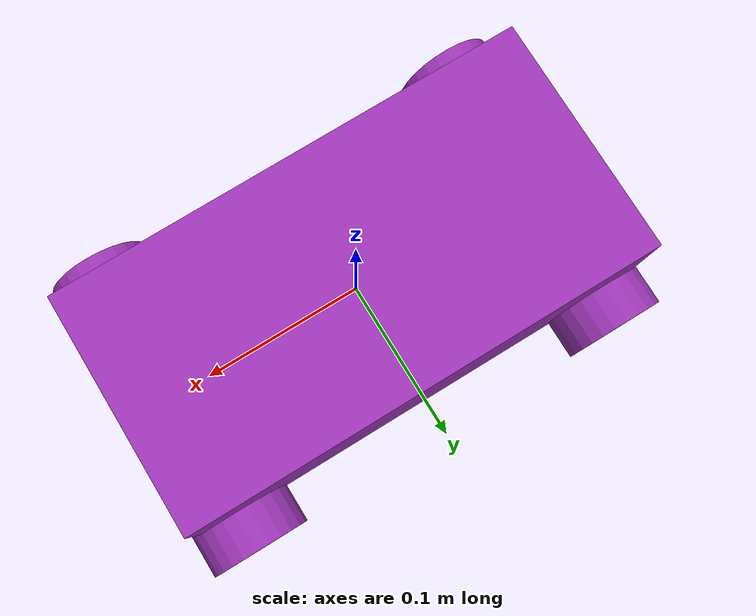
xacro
<?xml version="1.0"?>
<robot name="car" xmlns:xacro="http://www.ros.org/wiki/xacro">
  <xacro:macro name="cylinder_inertia" params="r h m">
    <inertial>
      <mass value="${m}" />
      <inertia  ixx="${m*(3*r*r+h*h)/12}" ixy = "0" ixz = "0"
                iyy="${m*(3*r*r+h*h)/12}" iyz = "0"
                izz="${m*r*r/2}" />
    </inertial>
  </xacro:macro>

  <xacro:macro name="box_inertia" params="w h d m">
    <inertial>
      <mass value="${m}" />
      <inertia  ixx="${m*(h*h+d*d)/12}" ixy = "0" ixz = "0"
                iyy="${m*(w*w+d*d)/12}" iyz = "0"
                izz="${m*(w*w+h*h)/12}" />
    </inertial>
  </xacro:macro>

  <xacro:macro name="null_inertial">
    <xacro:box_inertia w="0.1" h="0.1" d="0.1" m="0.1" />
  </xacro:macro>

  <xacro:property name="car_mass" value="30.0" />
  <xacro:property name="car_length" value="0.3" />
  <xacro:property name="car_width" value="0.15" />
  <xacro:property name="car_height" value="0.1" />

  <xacro:property name="wheel_mass" value="1"/>
  <xacro:property name="wheel_diameter" value="0.06367"/>
  <xacro:property name="wheel_width" value="0.028"/>

  <xacro:property name="front_wheel_pos" value="0.127"/>
  <xacro:property name="rear_wheel_pos" value="-0.127"/>
  <xacro:property name="axle_width" value="0.2"/>
  <xacro:property name="steering_angle_limit" value="0.785"/> <!-- about 45 degrees -->

  <xacro:property name="left" value="1"/>
  <xacro:property name="right" value="-1"/>

  <!-- maximum effort and velocity limits in Nm and rad/s -->
  <xacro:property name="steering_effort" value="10"/>
  <xacro:property name="steering_velocity" value="100"/>
  <xacro:property name="axle_effort" value="100"/>
  <xacro:property name="axle_velocity" value="100"/>

  <material name="Red">
    <color rgba="1.0 0.7 1.0 1.0"/>
  </material>

  <!-- general wheel macro without functionality -->
  <xacro:macro name="wheel" params="lr_prefix fr_prefix lr_reflect wheel_pos child">
    <link name="${lr_prefix}_${fr_prefix}_axle_carrier">
      <!--xacro:box_inertia m="0.5" w="0.01" h="0.01" d="0.01"/-->
      <xacro:null_inertial/>
    </link>

    <joint name="${lr_prefix}_${fr_prefix}_shock" type="fixed">
      <origin xyz="${wheel_pos}  ${lr_reflect * (axle_width / 2 - wheel_width / 2)} -0.03471"/>
      <parent link="chassis"/>
      <child link="${child}"/>
      <axis xyz="0 0 0"/>
    </joint>

    <joint name="${lr_prefix}_${fr_prefix}_axle" type="continuous">
      <origin xyz="0 0 0" rpy="-1.57 0 0"/>
      <parent link="${lr_prefix}_${fr_prefix}_axle_carrier"/>
      <child link="${lr_prefix}_${fr_prefix}_wheel"/>
      <axis xyz="0 0 1"/>
      <limit effort="${axle_effort}" velocity="${axle_velocity}"/>
      <dynamics damping="0.01" friction="0.1" />
    </joint>

    <link name="${lr_prefix}_${fr_prefix}_wheel">
      <visual>
        <origin xyz="0 0 0" rpy="0 0 0"/>
        <geometry>
          <cylinder radius="${wheel_diameter / 2}" length="${wheel_width}"/>
        </geometry>
      </visual>
      <collision>
        <origin xyz="0 0 0" rpy="0 0 0"/>
        <geometry>
          <cylinder radius="${wheel_diameter / 2}" length="${wheel_width}"/>
        </geometry>
      </collision>
      <xacro:cylinder_inertia m="${wheel_mass}" r="${wheel_diameter / 2}" h="${wheel_width}"/>
    </link>

    <gazebo reference="${lr_prefix}_${fr_prefix}_wheel">
      <mu1>0.7</mu1>
      <mu2>0.7</mu2>
      <kd>1</kd>
      <kp>100000000</kp>
      <material>Gazebo/Purple</material>
    </gazebo>
  </xacro:macro>

  <!-- Front Wheel Macro with steering -->
  <xacro:macro name="front_wheel" params="lr_prefix fr_prefix lr_reflect wheel_pos">
    <link name="${lr_prefix}_steering_link">
      <xacro:null_inertial/>
    </link>

    <joint name="${lr_prefix}_steering_joint" type="revolute">
      <parent link="${lr_prefix}_steering_link"/>
      <child link="${lr_prefix}_${fr_prefix}_axle_carrier"/>
      <axis xyz="0 0 1"/>
      <limit lower="-${steering_angle_limit}" upper="${steering_angle_limit}" effort="${steering_effort}" velocity="${steering_velocity}"/>
    </joint>
    <xacro:wheel lr_prefix="${lr_prefix}" fr_prefix="${fr_prefix}"
                 lr_reflect="${lr_reflect}" wheel_pos="${wheel_pos}" child="${lr_prefix}_steering_link"/>
  </xacro:macro>

  <!-- Rear Wheel Macro with motor -->
  <xacro:macro name="rear_wheel" params="lr_prefix fr_prefix lr_reflect wheel_pos">
    <xacro:wheel lr_prefix="${lr_prefix}" fr_prefix="${fr_prefix}"
                 lr_reflect="${lr_reflect}" wheel_pos="${wheel_pos}" child="${lr_prefix}_${fr_prefix}_axle_carrier"/>

  </xacro:macro>

  <link name="base_link">
    <visual>
      <geometry>
        <box size="0.01 0.01 0.01"/>
      </geometry>
      <material name="chassis_mat"/>
    </visual>
  </link>
  <gazebo reference="base_link">
    <material>Gazebo/Grey</material>
  </gazebo>

  <!-- Main body -->
  <link name="chassis">
    <xacro:box_inertia m="${car_mass}" w="${car_length}" h="${car_width}" d="${car_height}"/>
    <visual>
      <origin xyz="0 0 0" rpy="0 0 0" />
      <geometry>
        <box size="${car_length} ${car_width} ${car_height}" />
      </geometry>
    </visual>
    <collision>
      <origin xyz="0 0 0" rpy="0 0 0" />
      <geometry>
        <box size="${car_length} ${car_width} ${car_height}" />
      </geometry>
    </collision>
  </link>
  <gazebo reference="chassis">
    <material>Gazebo/Purple</material>
  </gazebo>

  <joint name="base_link_to_chassis" type="fixed">
    <axis xyz="0 -1 -1" />
    <parent link="base_link"/>
    <child link="chassis"/>
  </joint>

  <link name="imu">
    <!--xacro:null_inertial/-->
  </link>
  <joint name="base_link_to_imu" type="fixed">
    <origin xyz="0.0 0.0 0.0"/>
    <parent link="base_link"/>
    <child link="imu"/>
    <dynamics damping="0.0" friction="0.0"/>
  </joint>

  <gazebo reference="imu">
    <sensor name="imu" type="imu">
      <always_on>1</always_on>
      <update_rate>30.0</update_rate>
    </sensor>
  </gazebo>

<!-- Normal ToF Sensor -->

  <xacro:macro name="lidar_sensor" params="idx xyz angle">
    <link name="lidar_link_${idx}">
      <!--xacro:null_inertial/-->
    </link>

    <joint name="lidar_joint_${idx}" type="fixed">
      <axis xyz="0 0 -1"/>
      <origin xyz="${xyz}" rpy="0 0 ${angle}"/>
      <parent link="base_link"/>
      <child link="lidar_link_${idx}"/>
    </joint>

    <gazebo reference="lidar_link_${idx}">
      <sensor type="ray" name="lidar_sensor_${idx}">
        <pose>0 0 0 0 0 0</pose>
        <visualize>true</visualize>
        <update_rate>15</update_rate>
        <ray>
          <scan>
            <horizontal>
              <samples>5</samples>
              <resolution>1</resolution>
              <min_angle>-0.2181662</min_angle>
              <max_angle>0.2181662</max_angle>
            </horizontal>
          </scan>
          <range>
            <min>0.10</min>
            <max>3.0</max>
            <resolution>0.009</resolution>
          </range>
        </ray>
        <plugin name="scan" filename="libgazebo_ros_ray_sensor.so">
          <ros>
            <remapping>~/out:=tof_${idx}</remapping>
          </ros>
          <output_type>sensor_msgs/Range</output_type>
          <frame_name>tof_${idx}</frame_name>
          <radiation_type>ultrasound</radiation_type>
        </plugin>
      </sensor>
    </gazebo>
  </xacro:macro>

<!-- Modified ToF sensor (for overtaker) -->

  <xacro:macro name="lidar_sensor_lane" params="idx xyz angle">
    <link name="lidar_link_${idx}">
      <!--xacro:null_inertial/-->
    </link>

    <joint name="lidar_joint_${idx}" type="fixed">
      <axis xyz="0 0 -1"/>
      <origin xyz="${xyz}" rpy="0 0 ${angle}"/>
      <parent link="base_link"/>
      <child link="lidar_link_${idx}"/>
    </joint>

    <gazebo reference="lidar_link_${idx}">
      <sensor type="ray" name="lidar_sensor_${idx}">
        <pose>0 0 0 0 0 0</pose>
        <visualize>true</visualize>
        <update_rate>15</update_rate>
        <ray>
          <scan>
            <horizontal>
              <samples>2</samples>
              <resolution>1</resolution>
              <min_angle>-0.027</min_angle>
              <max_angle>0.027</max_angle>
            </horizontal>
          </scan>
          <range>
            <min>0.10</min>
            <max>2.5</max>
            <resolution>0.009</resolution>
          </range>
        </ray>
        <plugin name="scan" filename="libgazebo_ros_ray_sensor.so">
          <ros>
            <remapping>~/out:=tof_${idx}</remapping>
          </ros>
          <output_type>sensor_msgs/Range</output_type>
          <frame_name>tof_${idx}</frame_name>
          <radiation_type>ultrasound</radiation_type>
        </plugin>
      </sensor>
    </gazebo>
  </xacro:macro>

<!-- Laser Sensor (for velocity control) -->

  <xacro:macro name="lidar_sensor_laser" params="idx xyz angle">
    <link name="lidar_link_${idx}">
      <!--xacro:null_inertial/-->
    </link>

    <joint name="lidar_joint_${idx}" type="fixed">
      <axis xyz="0 0 -1"/>
      <origin xyz="${xyz}" rpy="0 0 ${angle}"/>
      <parent link="base_link"/>
      <child link="lidar_link_${idx}"/>
    </joint>

    <gazebo reference="lidar_link_${idx}">
      <sensor type="ray" name="lidar_sensor_${idx}">
        <pose>0 0 0 0 0 0</pose>
        <always_on>true</always_on>
        <visualize>true</visualize>
        <update_rate>5</update_rate>
        <ray>
          <scan>
            <horizontal>
              <samples>360</samples>
              <resolution>1.00000</resolution>
              <min_angle>0.000000</min_angle>
              <max_angle>6.280000</max_angle>
            </horizontal>
          </scan>
          <range>
            <min>0.120000</min>
            <max>3.5</max>
            <resolution>0.015000</resolution>
          </range>
          <noise>
            <type>gaussian</type>
            <mean>0.0</mean>
            <stddev>0.01</stddev>
          </noise>
        </ray>
        <plugin name="scan" filename="libgazebo_ros_ray_sensor.so">
          <ros>
            <remapping>~/out:=tof_${idx}</remapping>
          </ros>
          <output_type>sensor_msgs/LaserScan</output_type>
          <frame_name>tof_${idx}</frame_name>
        </plugin>
      </sensor>
    </gazebo>
  </xacro:macro>

<!-- Camera sensor -->

  <xacro:macro name="camera_sensor" params="xyz pitch">
    <link name="camera_link">
    </link>

    <joint name="camera_joint" type="fixed">
      <axis xyz="0 0 -1"/>
      <origin xyz="${xyz}" rpy="0 ${pitch} 0"/>
      <parent link="base_link"/>
      <child link="camera_link"/>
    </joint>

    <gazebo reference="camera_link">
      <sensor type="camera" name="camera">
        <visualize>true</visualize>
        <update_rate>30.0</update_rate>
        <camera name="camera">
          <horizontal_fov>1.5707963267948966</horizontal_fov>
          <image>
            <width>640</width>
            <height>480</height>
            <format>B8G8R8</format>
          </image>
          <clip>
            <near>0.02</near>
            <far>300</far>
          </clip>
        </camera>
        <plugin name="camera_controller" filename="libgazebo_ros_camera.so">
          <alwaysOn>true</alwaysOn>
          <updateRate>30.0</updateRate>
          <frameName>camera_link</frameName>
        </plugin>
      </sensor>
    </gazebo>
  </xacro:macro>

  <!-- Wheels -->
  <xacro:front_wheel lr_prefix="left" fr_prefix="front" lr_reflect="${left}" wheel_pos="${front_wheel_pos}"/>
  <xacro:front_wheel lr_prefix="right" fr_prefix="front" lr_reflect="${right}" wheel_pos="${front_wheel_pos}"/>
  <xacro:rear_wheel lr_prefix="left" fr_prefix="rear" lr_reflect="${left}" wheel_pos="${rear_wheel_pos}"/>
  <xacro:rear_wheel lr_prefix="right" fr_prefix="rear" lr_reflect="${right}" wheel_pos="${rear_wheel_pos}"/>

  <xacro:lidar_sensor idx="Front_Left" xyz="0.05 0.1 0.018" angle="1.5707963267948966"/>
  <xacro:lidar_sensor idx="Front_Right" xyz="0.05 -0.1 0.018" angle="-1.5707963267948966"/>
  <xacro:lidar_sensor idx="Back" xyz="-0.15 0 0.018" angle="3.141592"/>
  <xacro:lidar_sensor_lane idx="Front" xyz="0.15 0 0.018" angle="0"/>
  <xacro:camera_sensor xyz="0.6 0 1" pitch="1.57"/>

  <ros2_control name="GazeboSystem" type="system">
    <hardware>
      <plugin>gazebo_ros2_control/GazeboSystem</plugin>
    </hardware>
    <joint name="left_rear_axle">
      <command_interface name="velocity">
        <param name="min">-10</param>
        <param name="max">10</param>
      </command_interface>
      <state_interface name="velocity"/>
    </joint>
    <joint name="right_rear_axle">
      <command_interface name="velocity">
        <param name="min">-10</param>
        <param name="max">10</param>
      </command_interface>
      <state_interface name="velocity"/>
    </joint>
    <joint name="left_steering_joint">
      <command_interface name="position">
        <param name="min">-10</param>
        <param name="max">10</param>
      </command_interface>
    </joint>
    <joint name="right_steering_joint">
      <command_interface name="position">
        <param name="min">-10</param>
        <param name="max">10</param>
      </command_interface>
    </joint>
    <sensor name="imu">
      <state_interface name="orientation.x"/>
      <state_interface name="orientation.y"/>
      <state_interface name="orientation.z"/>
      <state_interface name="orientation.w"/>
      <state_interface name="angular_velocity.x"/>
      <state_interface name="angular_velocity.y"/>
      <state_interface name="angular_velocity.z"/>
      <state_interface name="linear_acceleration.x"/>
      <state_interface name="linear_acceleration.y"/>
      <state_interface name="linear_acceleration.z"/>
    </sensor>
  </ros2_control>

  <gazebo>
    <plugin filename="libgazebo_ros2_control.so" name="gazebo_ros2_controll">
      <robot_param>robot_description</robot_param>
      <robot_param_node>robot_state_publisher</robot_param_node>
      <parameters>$(find gazebo_simulation)/config/controller.yaml</parameters>
    </plugin>
  </gazebo>
</robot>
